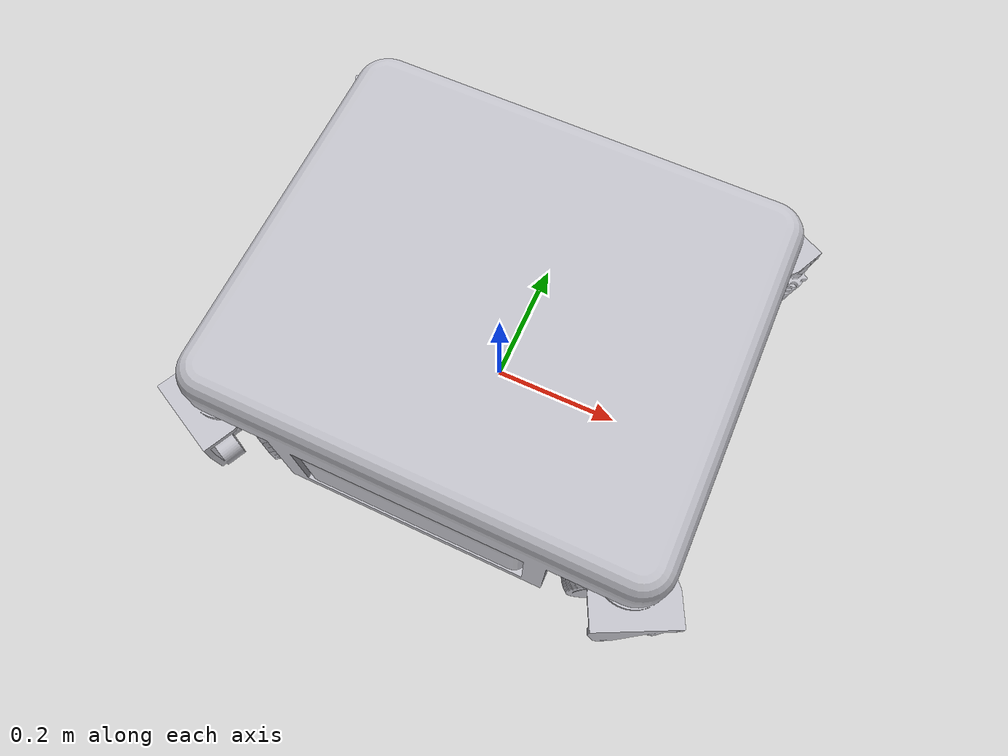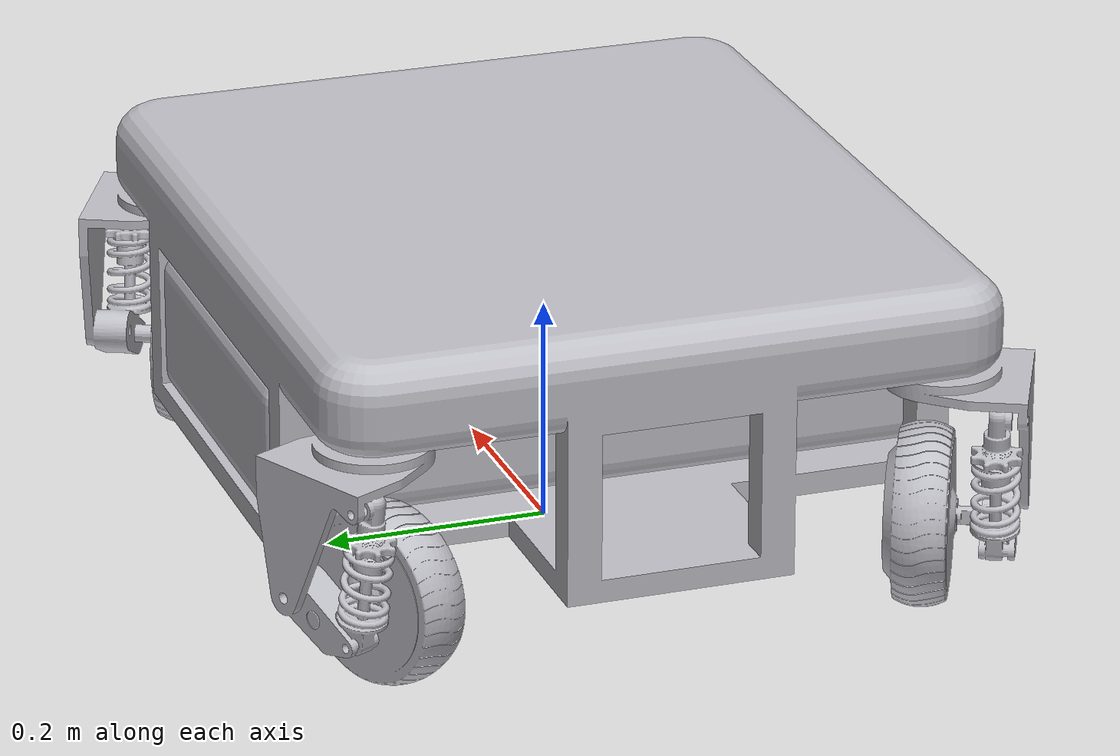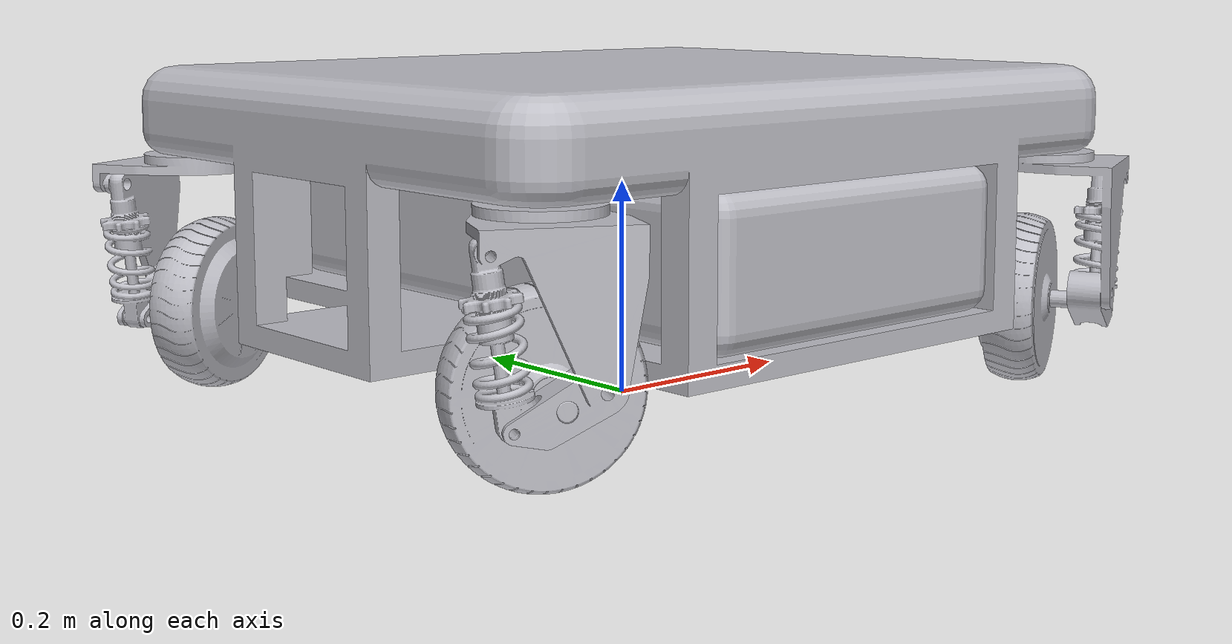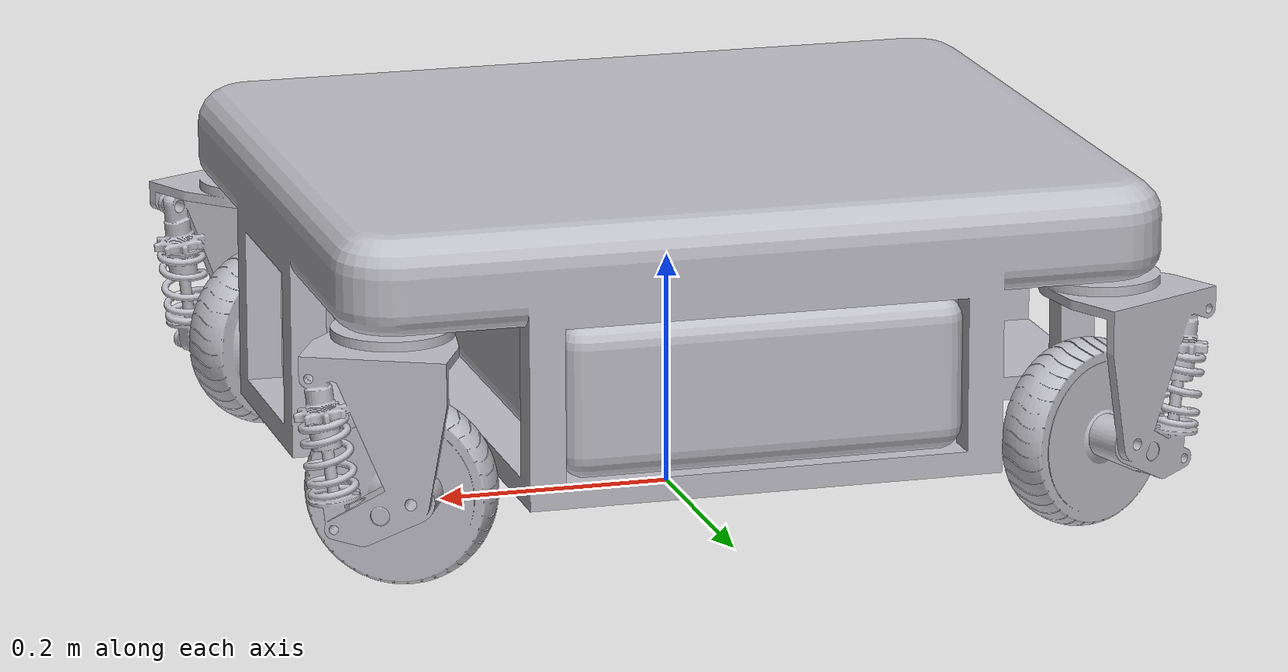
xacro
<?xml version="1.0" ?>
<robot name="robot" xmlns:xacro="http://www.ros.org/wiki/xacro">

<xacro:include filename="$(find robot_description)/urdf/materials.xacro" />
<xacro:include filename="$(find robot_description)/urdf/robot.trans" />
<xacro:include filename="$(find robot_description)/urdf/robot.gazebo" />
<link name="base_link">
  <inertial>
    <origin xyz="-1.8900164624709385e-16 1.9394215883236902e-16 0.23807410111586577" rpy="0 0 0"/>
    <mass value="312.2452326040869"/>
    <inertia ixx="10.489644" iyy="13.496294" izz="21.038002" ixy="-0.0" iyz="0.0" ixz="-0.0"/>
  </inertial>
  <visual>
    <origin xyz="0 0 0" rpy="0 0 0"/>
    <geometry>
      <mesh filename="package://robot_description/meshes/base_link.stl" scale="0.001 0.001 0.001"/>
    </geometry>
    <material name="silver"/>
  </visual>
  <collision>
    <origin xyz="0 0 0" rpy="0 0 0"/>
    <geometry>
      <mesh filename="package://robot_description/meshes/base_link.stl" scale="0.001 0.001 0.001"/>
    </geometry>
  </collision>
</link>

<link name="box_link_1">
  <inertial>
    <origin xyz="1.5040079279938817e-17 2.5413693574416403e-16 0.06500027283105689" rpy="0 0 0"/>
    <mass value="205.3820269105189"/>
    <inertia ixx="6.377362" iyy="2.228738" izz="8.038712" ixy="-0.0" iyz="0.0" ixz="-0.0"/>
  </inertial>
  <visual>
    <origin xyz="-0.0 -0.0 -0.097997" rpy="0 0 0"/>
    <geometry>
      <mesh filename="package://robot_description/meshes/box_link_1.stl" scale="0.001 0.001 0.001"/>
    </geometry>
    <material name="silver"/>
  </visual>
  <collision>
    <origin xyz="-0.0 -0.0 -0.097997" rpy="0 0 0"/>
    <geometry>
      <mesh filename="package://robot_description/meshes/box_link_1.stl" scale="0.001 0.001 0.001"/>
    </geometry>
  </collision>
</link>

<link name="rl_steer_link_1">
  <inertial>
    <origin xyz="0.017950310603007114 -0.03149760016061537 -0.0534051253188742" rpy="0 0 0"/>
    <mass value="2.7257433302537777"/>
    <inertia ixx="0.010411" iyy="0.010145" izz="0.005759" ixy="-1.4e-05" iyz="-0.002165" ixz="0.001002"/>
  </inertial>
  <visual>
    <origin xyz="-0.3 0.25 -0.227997" rpy="0 0 0"/>
    <geometry>
      <mesh filename="package://robot_description/meshes/rl_steer_link_1.stl" scale="0.001 0.001 0.001"/>
    </geometry>
    <material name="silver"/>
  </visual>
  <collision>
    <origin xyz="-0.3 0.25 -0.227997" rpy="0 0 0"/>
    <geometry>
      <mesh filename="package://robot_description/meshes/rl_steer_link_1.stl" scale="0.001 0.001 0.001"/>
    </geometry>
  </collision>
</link>

<link name="rl_wheel_link_1">
  <inertial>
    <origin xyz="-0.03569069649667589 0.07255103884111283 -2.9340527230026225e-10" rpy="0 0 0"/>
    <mass value="7.520478539101567"/>
    <inertia ixx="0.014156" iyy="0.019506" izz="0.012445" ixy="-0.003476" iyz="-0.0" ixz="0.0"/>
  </inertial>
  <visual>
    <origin xyz="-0.326756 0.311506 -0.088645" rpy="0 0 0"/>
    <geometry>
      <mesh filename="package://robot_description/meshes/rl_wheel_link_1.stl" scale="0.001 0.001 0.001"/>
    </geometry>
    <material name="silver"/>
  </visual>
  <collision>
    <origin xyz="-0.326756 0.311506 -0.088645" rpy="0 0 0"/>
    <geometry>
      <mesh filename="package://robot_description/meshes/rl_wheel_link_1.stl" scale="0.001 0.001 0.001"/>
    </geometry>
  </collision>
</link>

<link name="rr_steer_link_1">
  <inertial>
    <origin xyz="0.017950307881930472 0.031497601074724435 -0.05340512476516024" rpy="0 0 0"/>
    <mass value="2.7257431765122377"/>
    <inertia ixx="0.010411" iyy="0.010145" izz="0.005759" ixy="1.4e-05" iyz="0.002165" ixz="0.001002"/>
  </inertial>
  <visual>
    <origin xyz="-0.3 -0.25 -0.227997" rpy="0 0 0"/>
    <geometry>
      <mesh filename="package://robot_description/meshes/rr_steer_link_1.stl" scale="0.001 0.001 0.001"/>
    </geometry>
    <material name="silver"/>
  </visual>
  <collision>
    <origin xyz="-0.3 -0.25 -0.227997" rpy="0 0 0"/>
    <geometry>
      <mesh filename="package://robot_description/meshes/rr_steer_link_1.stl" scale="0.001 0.001 0.001"/>
    </geometry>
  </collision>
</link>

<link name="rr_wheel_link_1">
  <inertial>
    <origin xyz="-0.035691607455776986 -0.07255173512706761 6.330418270555915e-07" rpy="0 0 0"/>
    <mass value="7.520662841589363"/>
    <inertia ixx="0.014157" iyy="0.019507" izz="0.012446" ixy="0.003475" iyz="0.0" ixz="0.0"/>
  </inertial>
  <visual>
    <origin xyz="-0.326756 -0.311506 -0.088645" rpy="0 0 0"/>
    <geometry>
      <mesh filename="package://robot_description/meshes/rr_wheel_link_1.stl" scale="0.001 0.001 0.001"/>
    </geometry>
    <material name="silver"/>
  </visual>
  <collision>
    <origin xyz="-0.326756 -0.311506 -0.088645" rpy="0 0 0"/>
    <geometry>
      <mesh filename="package://robot_description/meshes/rr_wheel_link_1.stl" scale="0.001 0.001 0.001"/>
    </geometry>
  </collision>
</link>

<link name="fl_steer_link_1">
  <inertial>
    <origin xyz="-0.017950311313098377 -0.03149760029357873 -0.05340512198233491" rpy="0 0 0"/>
    <mass value="2.7257434097784734"/>
    <inertia ixx="0.010411" iyy="0.010145" izz="0.005759" ixy="1.4e-05" iyz="-0.002165" ixz="-0.001002"/>
  </inertial>
  <visual>
    <origin xyz="0.3 0.25 -0.227997" rpy="0 0 0"/>
    <geometry>
      <mesh filename="package://robot_description/meshes/fl_steer_link_1.stl" scale="0.001 0.001 0.001"/>
    </geometry>
    <material name="silver"/>
  </visual>
  <collision>
    <origin xyz="0.3 0.25 -0.227997" rpy="0 0 0"/>
    <geometry>
      <mesh filename="package://robot_description/meshes/fl_steer_link_1.stl" scale="0.001 0.001 0.001"/>
    </geometry>
  </collision>
</link>

<link name="fl_wheel_link_1">
  <inertial>
    <origin xyz="0.03569021754829138 0.07255204073947424 4.879957858222594e-07" rpy="0 0 0"/>
    <mass value="7.520325450240956"/>
    <inertia ixx="0.014155" iyy="0.019505" izz="0.012445" ixy="0.003475" iyz="0.0" ixz="0.0"/>
  </inertial>
  <visual>
    <origin xyz="0.326756 0.311506 -0.088645" rpy="0 0 0"/>
    <geometry>
      <mesh filename="package://robot_description/meshes/fl_wheel_link_1.stl" scale="0.001 0.001 0.001"/>
    </geometry>
    <material name="silver"/>
  </visual>
  <collision>
    <origin xyz="0.326756 0.311506 -0.088645" rpy="0 0 0"/>
    <geometry>
      <mesh filename="package://robot_description/meshes/fl_wheel_link_1.stl" scale="0.001 0.001 0.001"/>
    </geometry>
  </collision>
</link>

<link name="fr_steer_link_1">
  <inertial>
    <origin xyz="-0.01795030867488423 0.03149760048462252 -0.05340512487331031" rpy="0 0 0"/>
    <mass value="2.725743231035197"/>
    <inertia ixx="0.010411" iyy="0.010145" izz="0.005759" ixy="-1.4e-05" iyz="0.002165" ixz="-0.001002"/>
  </inertial>
  <visual>
    <origin xyz="0.3 -0.25 -0.227997" rpy="0 0 0"/>
    <geometry>
      <mesh filename="package://robot_description/meshes/fr_steer_link_1.stl" scale="0.001 0.001 0.001"/>
    </geometry>
    <material name="silver"/>
  </visual>
  <collision>
    <origin xyz="0.3 -0.25 -0.227997" rpy="0 0 0"/>
    <geometry>
      <mesh filename="package://robot_description/meshes/fr_steer_link_1.stl" scale="0.001 0.001 0.001"/>
    </geometry>
  </collision>
</link>

<link name="fr_wheel_link_1">
  <inertial>
    <origin xyz="0.03568972206055099 -0.07255126082019867 5.163585681117189e-07" rpy="0 0 0"/>
    <mass value="7.52035318225831"/>
    <inertia ixx="0.014156" iyy="0.019505" izz="0.012445" ixy="-0.003475" iyz="0.0" ixz="-0.0"/>
  </inertial>
  <visual>
    <origin xyz="0.326756 -0.311506 -0.088645" rpy="0 0 0"/>
    <geometry>
      <mesh filename="package://robot_description/meshes/fr_wheel_link_1.stl" scale="0.001 0.001 0.001"/>
    </geometry>
    <material name="silver"/>
  </visual>
  <collision>
    <origin xyz="0.326756 -0.311506 -0.088645" rpy="0 0 0"/>
    <geometry>
      <mesh filename="package://robot_description/meshes/fr_wheel_link_1.stl" scale="0.001 0.001 0.001"/>
    </geometry>
  </collision>
</link>

<joint name="box_joint" type="fixed">
  <origin xyz="0.0 0.0 0.097997" rpy="0 0 0"/>
  <parent link="base_link"/>
  <child link="box_link_1"/>
</joint>

<joint name="rl_steer_joint" type="continuous">
  <origin xyz="0.3 -0.25 0.227997" rpy="0 0 0"/>
  <parent link="base_link"/>
  <child link="rl_steer_link_1"/>
  <axis xyz="0.0 -0.0 -1.0"/>
</joint>

<joint name="rl_wheel_joint" type="continuous">
  <origin xyz="0.026756 -0.061506 -0.139352" rpy="0 0 0"/>
  <parent link="rl_steer_link_1"/>
  <child link="rl_wheel_link_1"/>
  <axis xyz="-0.441333 0.897343 0.0"/>
</joint>

<joint name="rr_steer_joint" type="continuous">
  <origin xyz="0.3 0.25 0.227997" rpy="0 0 0"/>
  <parent link="base_link"/>
  <child link="rr_steer_link_1"/>
  <axis xyz="0.0 -0.0 -1.0"/>
</joint>

<joint name="rr_wheel_joint" type="continuous">
  <origin xyz="0.026756 0.061506 -0.139352" rpy="0 0 0"/>
  <parent link="rr_steer_link_1"/>
  <child link="rr_wheel_link_1"/>
  <axis xyz="-0.441333 -0.897343 -0.0"/>
</joint>

<joint name="fl_steer_joint" type="continuous">
  <origin xyz="-0.3 -0.25 0.227997" rpy="0 0 0"/>
  <parent link="base_link"/>
  <child link="fl_steer_link_1"/>
  <axis xyz="0.0 -0.0 -1.0"/>
</joint>

<joint name="fl_wheel_joint" type="continuous">
  <origin xyz="-0.026756 -0.061506 -0.139352" rpy="0 0 0"/>
  <parent link="fl_steer_link_1"/>
  <child link="fl_wheel_link_1"/>
  <axis xyz="0.441333 0.897343 0.0"/>
</joint>

<joint name="fr_steer_joint" type="continuous">
  <origin xyz="-0.3 0.25 0.227997" rpy="0 0 0"/>
  <parent link="base_link"/>
  <child link="fr_steer_link_1"/>
  <axis xyz="0.0 -0.0 -1.0"/>
</joint>

<joint name="fr_wheel_joint" type="continuous">
  <origin xyz="-0.026756 0.061506 -0.139352" rpy="0 0 0"/>
  <parent link="fr_steer_link_1"/>
  <child link="fr_wheel_link_1"/>
  <axis xyz="0.441333 -0.897343 -0.0"/>
</joint>

</robot>

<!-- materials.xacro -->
<robot name="robot" xmlns:xacro="http://www.ros.org/wiki/xacro" >

<material name="silver_default">
  <color rgba="0.700 0.700 0.700 1.000"/>
</material>
<material name="abs_white">
  <color rgba="0.9647058823529412 0.9647058823529412 0.9529411764705882 1.0"/>
</material>
<material name="paek_beige">
  <color rgba="0.8980392156862745 0.792156862745098 0.6196078431372549 1.0"/>
</material>
<material name="plastic_matte_red">
  <color rgba="0.7686274509803922 0.20784313725490197 0.15294117647058825 1.0"/>
</material>
<material name="plastic_glossy_black">
  <color rgba="0.09803921568627451 0.09803921568627451 0.09803921568627451 1.0"/>
</material>
<material name="aluminum_satin">
  <color rgba="0.9607843137254902 0.9607843137254902 0.9647058823529412 1.0"/>
</material>
<material name="rubber_soft">
  <color rgba="0.15294117647058825 0.15294117647058825 0.15294117647058825 1.0"/>
</material>

</robot>

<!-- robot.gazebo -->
<robot name="robot" xmlns:xacro="http://www.ros.org/wiki/xacro" >

<xacro:property name="body_color" value="Gazebo/Silver" />

<gazebo>
  <plugin name="control" filename="libgazebo_ros_control.so"/>
</gazebo>
<gazebo reference="base_link">
  <material>${body_color}</material>
  <mu1>0.2</mu1>
  <mu2>0.2</mu2>
  <selfCollide>true</selfCollide>
  <gravity>true</gravity>
</gazebo>

<gazebo reference="box_link_1">
  <material>${body_color}</material>
  <mu1>0.2</mu1>
  <mu2>0.2</mu2>
  <selfCollide>true</selfCollide>
</gazebo>

<gazebo reference="rl_steer_link_1">
  <material>${body_color}</material>
  <mu1>0.2</mu1>
  <mu2>0.2</mu2>
  <selfCollide>true</selfCollide>
</gazebo>

<gazebo reference="rl_wheel_link_1">
  <material>${body_color}</material>
  <mu1>0.2</mu1>
  <mu2>0.2</mu2>
  <selfCollide>true</selfCollide>
</gazebo>

<gazebo reference="rr_steer_link_1">
  <material>${body_color}</material>
  <mu1>0.2</mu1>
  <mu2>0.2</mu2>
  <selfCollide>true</selfCollide>
</gazebo>

<gazebo reference="rr_wheel_link_1">
  <material>${body_color}</material>
  <mu1>0.2</mu1>
  <mu2>0.2</mu2>
  <selfCollide>true</selfCollide>
</gazebo>

<gazebo reference="fl_steer_link_1">
  <material>${body_color}</material>
  <mu1>0.2</mu1>
  <mu2>0.2</mu2>
  <selfCollide>true</selfCollide>
</gazebo>

<gazebo reference="fl_wheel_link_1">
  <material>${body_color}</material>
  <mu1>0.2</mu1>
  <mu2>0.2</mu2>
  <selfCollide>true</selfCollide>
</gazebo>

<gazebo reference="fr_steer_link_1">
  <material>${body_color}</material>
  <mu1>0.2</mu1>
  <mu2>0.2</mu2>
  <selfCollide>true</selfCollide>
</gazebo>

<gazebo reference="fr_wheel_link_1">
  <material>${body_color}</material>
  <mu1>0.2</mu1>
  <mu2>0.2</mu2>
  <selfCollide>true</selfCollide>
</gazebo>

</robot>
